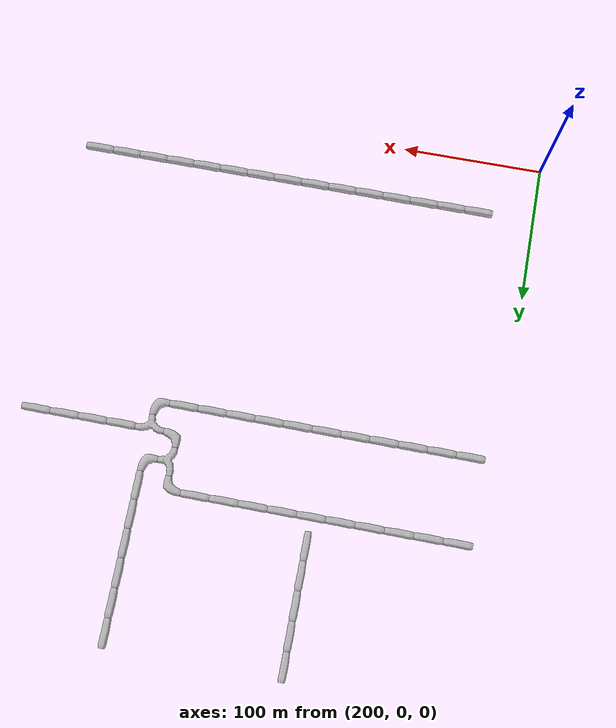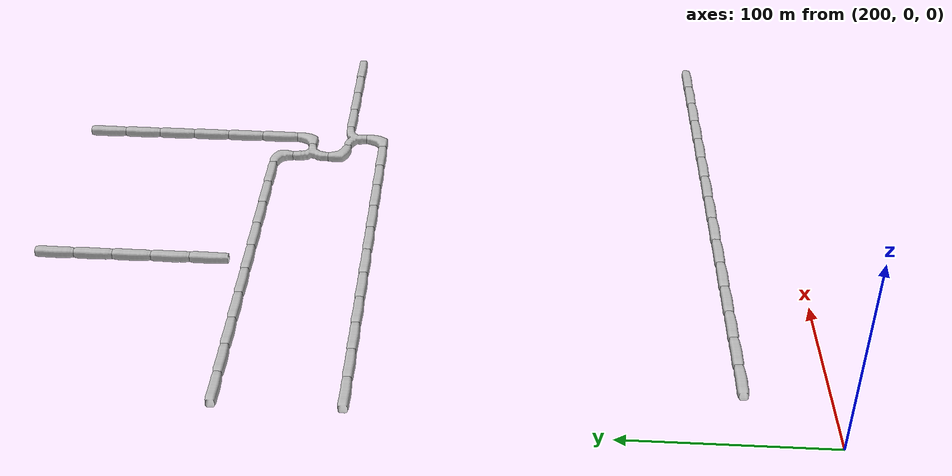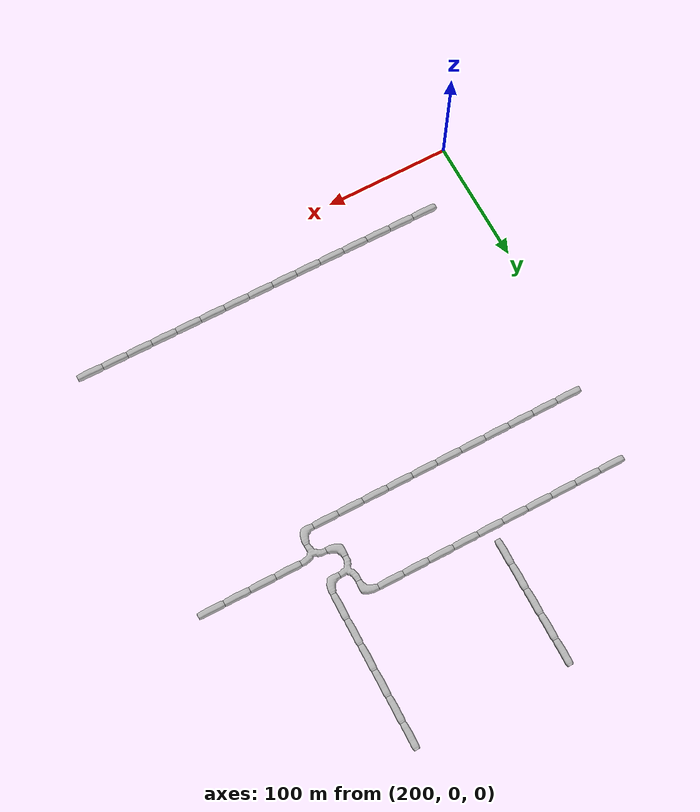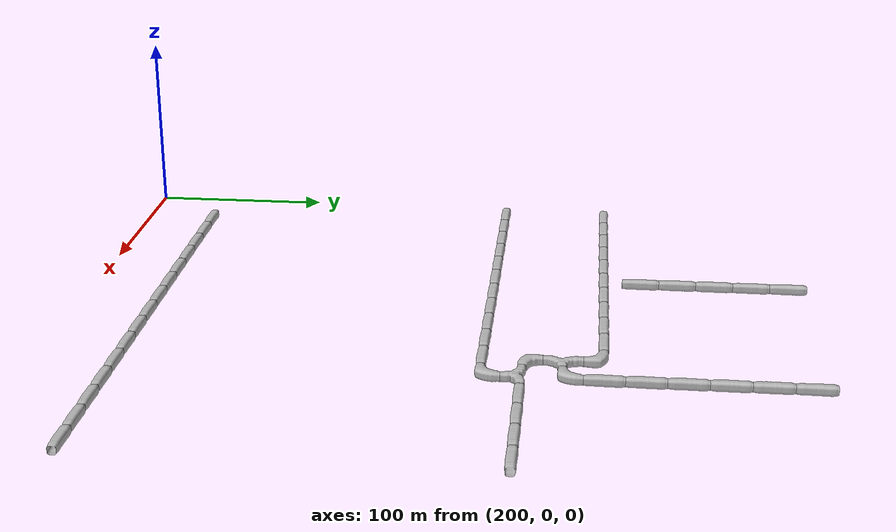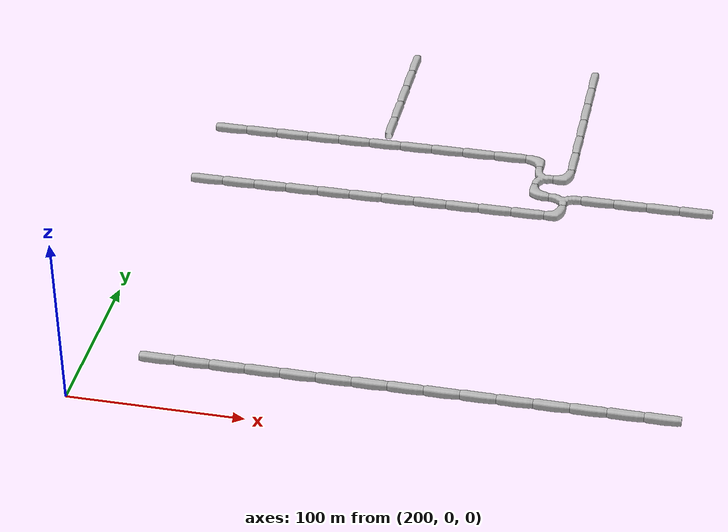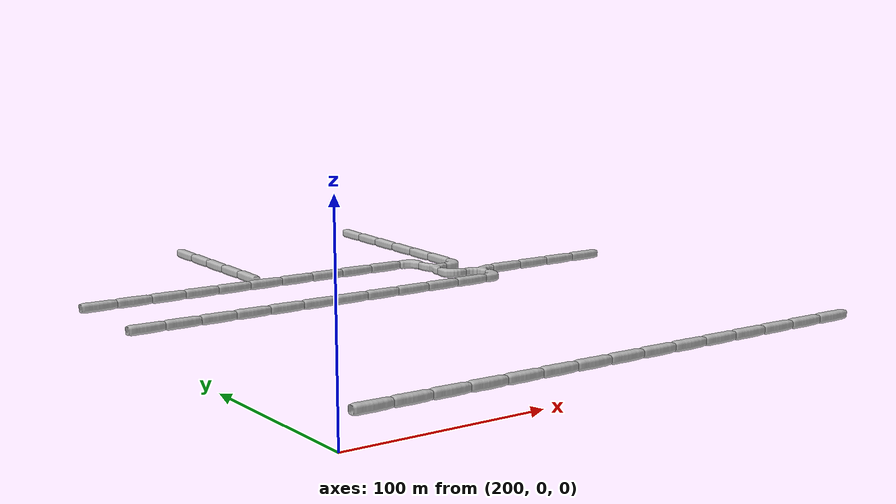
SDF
<sdf version="1.6">
 <world name="cave_32000_8">
  <include>
   <static>true</static>
   <name>cave_12_2</name>
   <pose>240 40 0 0 0 1.5707963267948966</pose>
   <uri>model://cave_straight_20m</uri>
  </include>
  <include>
   <static>true</static>
   <name>cave_13_2</name>
   <pose>260 40 0 0 0 1.5707963267948966</pose>
   <uri>model://cave_straight_20m</uri>
  </include>
  <include>
   <static>true</static>
   <name>cave_14_2</name>
   <pose>280 40 0 0 0 1.5707963267948966</pose>
   <uri>model://cave_straight_20m</uri>
  </include>
  <include>
   <static>true</static>
   <name>cave_15_2</name>
   <pose>300 40 0 0 0 1.5707963267948966</pose>
   <uri>model://cave_straight_20m</uri>
  </include>
  <include>
   <static>true</static>
   <name>cave_16_2</name>
   <pose>320 40 0 0 0 1.5707963267948966</pose>
   <uri>model://cave_straight_20m</uri>
  </include>
  <include>
   <static>true</static>
   <name>cave_17_2</name>
   <pose>340 40 0 0 0 1.5707963267948966</pose>
   <uri>model://cave_straight_20m</uri>
  </include>
  <include>
   <static>true</static>
   <name>cave_18_2</name>
   <pose>360 40 0 0 0 1.5707963267948966</pose>
   <uri>model://cave_straight_20m</uri>
  </include>
  <include>
   <static>true</static>
   <name>cave_19_2</name>
   <pose>380 40 0 0 0 1.5707963267948966</pose>
   <uri>model://cave_straight_20m</uri>
  </include>
  <include>
   <static>true</static>
   <name>cave_20_2</name>
   <pose>400 40 0 0 0 1.5707963267948966</pose>
   <uri>model://cave_straight_20m</uri>
  </include>
  <include>
   <static>true</static>
   <name>cave_21_2</name>
   <pose>420 40 0 0 0 1.5707963267948966</pose>
   <uri>model://cave_straight_20m</uri>
  </include>
  <include>
   <static>true</static>
   <name>cave_22_2</name>
   <pose>440 40 0 0 0 1.5707963267948966</pose>
   <uri>model://cave_straight_20m</uri>
  </include>
  <include>
   <static>true</static>
   <name>cave_23_2</name>
   <pose>460 40 0 0 0 1.5707963267948966</pose>
   <uri>model://cave_straight_20m</uri>
  </include>
  <include>
   <static>true</static>
   <name>cave_24_2</name>
   <pose>480 40 0 0 0 1.5707963267948966</pose>
   <uri>model://cave_straight_20m</uri>
  </include>
  <include>
   <static>true</static>
   <name>cave_25_2</name>
   <pose>500 40 0 0 0 1.5707963267948966</pose>
   <uri>model://cave_straight_20m</uri>
  </include>
  <include>
   <static>true</static>
   <name>cave_26_2</name>
   <pose>520 40 0 0 0 1.5707963267948966</pose>
   <uri>model://cave_straight_20m</uri>
  </include>
  <include>
   <static>true</static>
   <name>cave_11_14</name>
   <pose>220 280 0 0 0 1.5707963267948966</pose>
   <uri>model://cave_straight_20m</uri>
  </include>
  <include>
   <static>true</static>
   <name>cave_12_14</name>
   <pose>240 280 0 0 0 1.5707963267948966</pose>
   <uri>model://cave_straight_20m</uri>
  </include>
  <include>
   <static>true</static>
   <name>cave_13_14</name>
   <pose>260 280 0 0 0 1.5707963267948966</pose>
   <uri>model://cave_straight_20m</uri>
  </include>
  <include>
   <static>true</static>
   <name>cave_14_14</name>
   <pose>280 280 0 0 0 1.5707963267948966</pose>
   <uri>model://cave_straight_20m</uri>
  </include>
  <include>
   <static>true</static>
   <name>cave_15_14</name>
   <pose>300 280 0 0 0 1.5707963267948966</pose>
   <uri>model://cave_straight_20m</uri>
  </include>
  <include>
   <static>true</static>
   <name>cave_16_14</name>
   <pose>320 280 0 0 0 1.5707963267948966</pose>
   <uri>model://cave_straight_20m</uri>
  </include>
  <include>
   <static>true</static>
   <name>cave_17_14</name>
   <pose>340 280 0 0 0 1.5707963267948966</pose>
   <uri>model://cave_straight_20m</uri>
  </include>
  <include>
   <static>true</static>
   <name>cave_18_14</name>
   <pose>360 280 0 0 0 1.5707963267948966</pose>
   <uri>model://cave_straight_20m</uri>
  </include>
  <include>
   <static>true</static>
   <name>cave_19_14</name>
   <pose>380 280 0 0 0 1.5707963267948966</pose>
   <uri>model://cave_straight_20m</uri>
  </include>
  <include>
   <static>true</static>
   <name>cave_20_14</name>
   <pose>400 280 0 0 0 1.5707963267948966</pose>
   <uri>model://cave_straight_20m</uri>
  </include>
  <include>
   <static>true</static>
   <name>cave_21_14</name>
   <pose>420 280 0 0 0 3.141592653589793</pose>
   <uri>model://cave_L_20m</uri>
  </include>
  <include>
   <static>true</static>
   <name>cave_21_13</name>
   <pose>420 260 0 0 0 -1.5707963267948966</pose>
   <uri>model://cave_3way_20m</uri>
  </include>
  <include>
   <static>true</static>
   <name>cave_22_13</name>
   <pose>440 260 0 0 0 1.5707963267948966</pose>
   <uri>model://cave_L_20m</uri>
  </include>
  <include>
   <static>true</static>
   <name>cave_22_14</name>
   <pose>440 280 0 0 0 0.0</pose>
   <uri>model://cave_straight_20m</uri>
  </include>
  <include>
   <static>true</static>
   <name>cave_22_15</name>
   <pose>440 300 0 0 0 0.0</pose>
   <uri>model://cave_straight_20m</uri>
  </include>
  <include>
   <static>true</static>
   <name>cave_22_16</name>
   <pose>440 320 0 0 0 0.0</pose>
   <uri>model://cave_straight_20m</uri>
  </include>
  <include>
   <static>true</static>
   <name>cave_22_17</name>
   <pose>440 340 0 0 0 0.0</pose>
   <uri>model://cave_straight_20m</uri>
  </include>
  <include>
   <static>true</static>
   <name>cave_22_18</name>
   <pose>440 360 0 0 0 0.0</pose>
   <uri>model://cave_straight_20m</uri>
  </include>
  <include>
   <static>true</static>
   <name>cave_22_19</name>
   <pose>440 380 0 0 0 0.0</pose>
   <uri>model://cave_straight_20m</uri>
  </include>
  <include>
   <static>true</static>
   <name>cave_16_19</name>
   <pose>320 380 0 0 0 0.0</pose>
   <uri>model://cave_straight_20m</uri>
  </include>
  <include>
   <static>true</static>
   <name>cave_16_18</name>
   <pose>320 360 0 0 0 0.0</pose>
   <uri>model://cave_straight_20m</uri>
  </include>
  <include>
   <static>true</static>
   <name>cave_16_17</name>
   <pose>320 340 0 0 0 0.0</pose>
   <uri>model://cave_straight_20m</uri>
  </include>
  <include>
   <static>true</static>
   <name>cave_16_16</name>
   <pose>320 320 0 0 0 0.0</pose>
   <uri>model://cave_straight_20m</uri>
  </include>
  <include>
   <static>true</static>
   <name>cave_16_15</name>
   <pose>320 300 0 0 0 0.0</pose>
   <uri>model://cave_straight_20m</uri>
  </include>
  <include>
   <static>true</static>
   <name>cave_21_12</name>
   <pose>420 240 0 0 0 0.0</pose>
   <uri>model://cave_L_20m</uri>
  </include>
  <include>
   <static>true</static>
   <name>cave_22_12</name>
   <pose>440 240 0 0 0 3.141592653589793</pose>
   <uri>model://cave_3way_20m</uri>
  </include>
  <include>
   <static>true</static>
   <name>cave_23_12</name>
   <pose>460 240 0 0 0 1.5707963267948966</pose>
   <uri>model://cave_straight_20m</uri>
  </include>
  <include>
   <static>true</static>
   <name>cave_24_12</name>
   <pose>480 240 0 0 0 1.5707963267948966</pose>
   <uri>model://cave_straight_20m</uri>
  </include>
  <include>
   <static>true</static>
   <name>cave_25_12</name>
   <pose>500 240 0 0 0 1.5707963267948966</pose>
   <uri>model://cave_straight_20m</uri>
  </include>
  <include>
   <static>true</static>
   <name>cave_26_12</name>
   <pose>520 240 0 0 0 1.5707963267948966</pose>
   <uri>model://cave_straight_20m</uri>
  </include>
  <include>
   <static>true</static>
   <name>cave_22_11</name>
   <pose>440 220 0 0 0 1.5707963267948966</pose>
   <uri>model://cave_L_20m</uri>
  </include>
  <include>
   <static>true</static>
   <name>cave_21_11</name>
   <pose>420 220 0 0 0 1.5707963267948966</pose>
   <uri>model://cave_straight_20m</uri>
  </include>
  <include>
   <static>true</static>
   <name>cave_20_11</name>
   <pose>400 220 0 0 0 1.5707963267948966</pose>
   <uri>model://cave_straight_20m</uri>
  </include>
  <include>
   <static>true</static>
   <name>cave_19_11</name>
   <pose>380 220 0 0 0 1.5707963267948966</pose>
   <uri>model://cave_straight_20m</uri>
  </include>
  <include>
   <static>true</static>
   <name>cave_18_11</name>
   <pose>360 220 0 0 0 1.5707963267948966</pose>
   <uri>model://cave_straight_20m</uri>
  </include>
  <include>
   <static>true</static>
   <name>cave_17_11</name>
   <pose>340 220 0 0 0 1.5707963267948966</pose>
   <uri>model://cave_straight_20m</uri>
  </include>
  <include>
   <static>true</static>
   <name>cave_16_11</name>
   <pose>320 220 0 0 0 1.5707963267948966</pose>
   <uri>model://cave_straight_20m</uri>
  </include>
  <include>
   <static>true</static>
   <name>cave_15_11</name>
   <pose>300 220 0 0 0 1.5707963267948966</pose>
   <uri>model://cave_straight_20m</uri>
  </include>
  <include>
   <static>true</static>
   <name>cave_14_11</name>
   <pose>280 220 0 0 0 1.5707963267948966</pose>
   <uri>model://cave_straight_20m</uri>
  </include>
  <include>
   <static>true</static>
   <name>cave_13_11</name>
   <pose>260 220 0 0 0 1.5707963267948966</pose>
   <uri>model://cave_straight_20m</uri>
  </include>
  <include>
   <static>true</static>
   <name>cave_12_11</name>
   <pose>240 220 0 0 0 1.5707963267948966</pose>
   <uri>model://cave_straight_20m</uri>
  </include>
  <include>
   <static>true</static>
   <name>cave_11_11</name>
   <pose>220 220 0 0 0 1.5707963267948966</pose>
   <uri>model://cave_straight_20m</uri>
  </include>
 </world>
</sdf>
